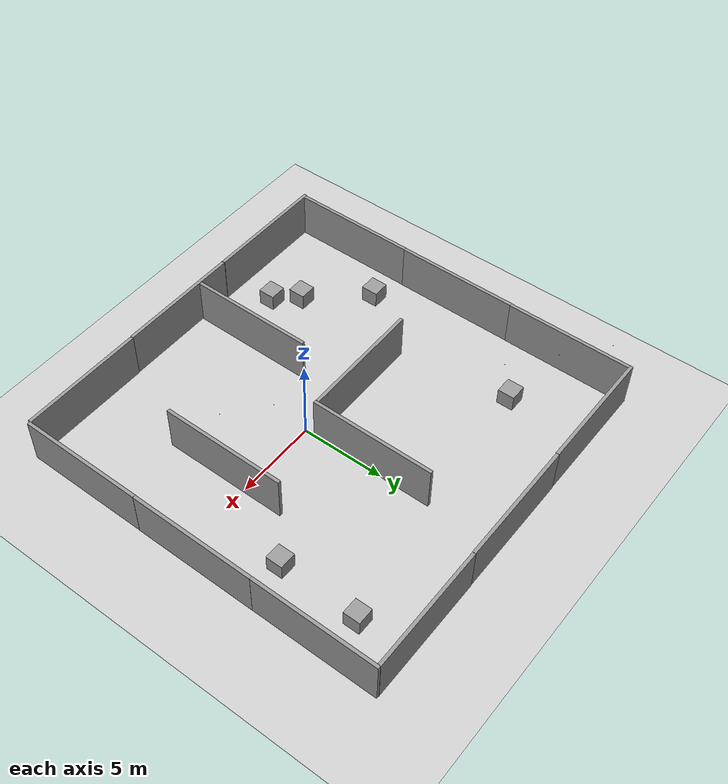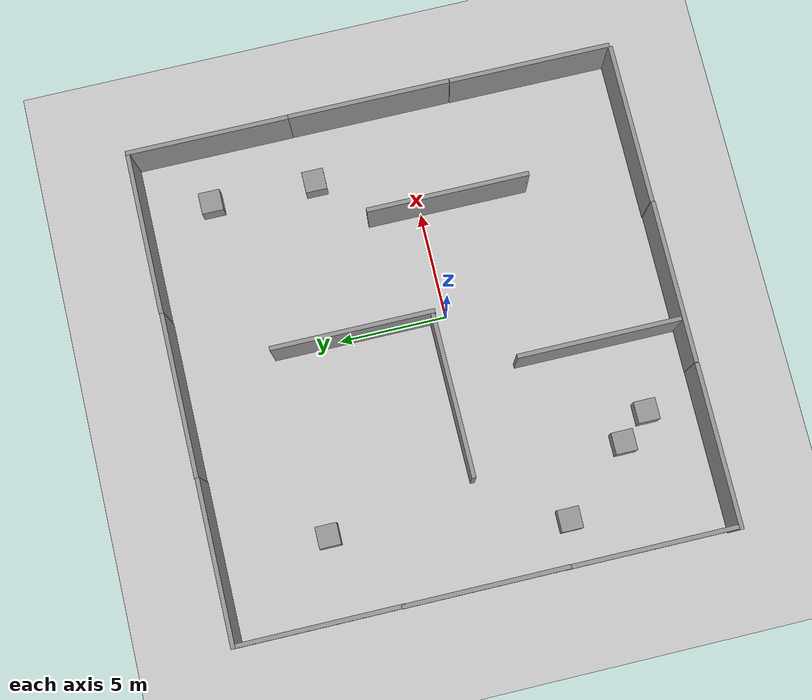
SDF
<sdf version="1.6">
 <world name="default">
  <light name="sun" type="directional">
   <pose>0 0 10 0 -0 0</pose>
   <diffuse>0.8 0.8 0.8 1</diffuse>
   <specular>0.1 0.1 0.1 1</specular>
   <attenuation>
    <range>1000</range>
    <constant>0.9</constant>
    <linear>0.01</linear>
    <quadratic>0.001</quadratic>
   </attenuation>
   <direction>-0.5 0.5 -1</direction>
  </light>
  <model name="ground_plane">
   <static>1</static>
   <link name="link">
    <collision name="collision">
     <geometry><plane><normal>0 0 1</normal><size>100 100</size></plane></geometry>
     <surface><friction><ode><mu>100</mu><mu2>50</mu2></ode></friction></surface>
    </collision>
    <visual name="visual">
     <cast_shadows>0</cast_shadows>
     <geometry><plane><normal>0 0 1</normal><size>100 100</size></plane></geometry>
     <material>
      <script><uri>file://media/materials/scripts/gazebo.material</uri><name>Gazebo/Grey</name></script>
     </material>
    </visual>
   </link>
  </model>
  <gravity>0 0 -9.8</gravity>
  <magnetic_field>6e-06 2.3e-05 -4.2e-05</magnetic_field>
  <atmosphere type="adiabatic"/>
  <physics name="default_physics" default="0" type="ode">
   <max_step_size>0.001</max_step_size>
   <real_time_factor>1</real_time_factor>
   <real_time_update_rate>1000</real_time_update_rate>
  </physics>
  <scene><ambient>0.4 0.4 0.4 1</ambient><background>0.7 0.7 0.7 1</background><shadows>1</shadows></scene>
  <spherical_coordinates>
   <surface_model>EARTH_WGS84</surface_model>
   <latitude_deg>0</latitude_deg>
   <longitude_deg>0</longitude_deg>
   <elevation>0</elevation>
   <heading_deg>0</heading_deg>
  </spherical_coordinates>
  <model name="grey_wall">
   <static>1</static>
   <link name="link">
    <pose>0 0 1.4 0 -0 0</pose>
    <collision name="collision"><geometry><box><size>7.5 0.2 2.8</size></box></geometry></collision>
    <visual name="visual">
     <cast_shadows>0</cast_shadows>
     <geometry><box><size>7.5 0.2 2.8</size></box></geometry>
     <material>
      <script>
       <uri>model://grey_wall/materials/scripts</uri>
       <uri>model://grey_wall/materials/textures</uri>
       <name>vrc/grey_wall</name>
      </script>
     </material>
    </visual>
   </link>
   <pose>6.2613 -10.0733 0 0 -0 0</pose>
  </model>
  <model name="grey_wall_0">
   <static>1</static>
   <link name="link">
    <pose>0 0 1.4 0 -0 0</pose>
    <collision name="collision"><geometry><box><size>7.5 0.2 2.8</size></box></geometry></collision>
    <visual name="visual">
     <cast_shadows>0</cast_shadows>
     <geometry><box><size>7.5 0.2 2.8</size></box></geometry>
     <material>
      <script>
       <uri>model://grey_wall/materials/scripts</uri>
       <uri>model://grey_wall/materials/textures</uri>
       <name>vrc/grey_wall</name>
      </script>
     </material>
    </visual>
   </link>
   <pose>10.1082 -6.29933 0 0 -0 1.56822</pose>
  </model>
  <model name="unit_box_0_0">
   <pose>3.35556 -11.1223 2.79982 -0.482892 0.000207 -0.610312</pose>
   <link name="link">
    <inertial>
     <mass>1</mass>
     <inertia>
      <ixx>0.166667</ixx>
      <ixy>0</ixy>
      <ixz>0</ixz>
      <iyy>0.166667</iyy>
      <iyz>0</iyz>
      <izz>0.166667</izz>
     </inertia>
    </inertial>
    <collision name="collision">
     <geometry><box><size>26998.3 4.53072e-05 0.000344048</size></box></geometry>
    </collision>
    <visual name="visual">
     <geometry><box><size>26998.3 4.53072e-05 0.000344048</size></box></geometry>
     <material>
      <script><name>Gazebo/Grey</name><uri>file://media/materials/scripts/gazebo.material</uri></script>
     </material>
    </visual>
   </link>
  </model>
  <model name="grey_wall_0_clone">
   <static>1</static>
   <link name="link">
    <pose>0 0 1.4 0 -0 0</pose>
    <collision name="collision"><geometry><box><size>7.5 0.2 2.8</size></box></geometry></collision>
    <visual name="visual">
     <cast_shadows>0</cast_shadows>
     <geometry><box><size>7.5 0.2 2.8</size></box></geometry>
     <material>
      <script>
       <uri>model://grey_wall/materials/scripts</uri>
       <uri>model://grey_wall/materials/textures</uri>
       <name>vrc/grey_wall</name>
      </script>
     </material>
    </visual>
   </link>
   <pose>10.1365 1.22047 0 0 -0 1.56822</pose>
  </model>
  <model name="grey_wall_0_clone_clone">
   <static>1</static>
   <link name="link">
    <pose>0 0 1.4 0 -0 0</pose>
    <collision name="collision"><geometry><box><size>7.5 0.2 2.8</size></box></geometry></collision>
    <visual name="visual">
     <cast_shadows>0</cast_shadows>
     <geometry><box><size>7.5 0.2 2.8</size></box></geometry>
     <material>
      <script>
       <uri>model://grey_wall/materials/scripts</uri>
       <uri>model://grey_wall/materials/textures</uri>
       <name>vrc/grey_wall</name>
      </script>
     </material>
    </visual>
   </link>
   <pose>10.1513 8.71164 0 0 -0 1.56822</pose>
  </model>
  <model name="grey_wall_0_clone_clone_clone">
   <static>1</static>
   <link name="link">
    <pose>0 0 1.4 0 -0 0</pose>
    <collision name="collision"><geometry><box><size>7.5 0.2 2.8</size></box></geometry></collision>
    <visual name="visual">
     <cast_shadows>0</cast_shadows>
     <geometry><box><size>7.5 0.2 2.8</size></box></geometry>
     <material>
      <script>
       <uri>model://grey_wall/materials/scripts</uri>
       <uri>model://grey_wall/materials/textures</uri>
       <name>vrc/grey_wall</name>
      </script>
     </material>
    </visual>
   </link>
   <pose>-12.3639 -6.26757 0 0 -0 1.56822</pose>
  </model>
  <model name="grey_wall_clone">
   <static>1</static>
   <link name="link">
    <pose>0 0 1.4 0 -0 0</pose>
    <collision name="collision"><geometry><box><size>7.5 0.2 2.8</size></box></geometry></collision>
    <visual name="visual">
     <cast_shadows>0</cast_shadows>
     <geometry><box><size>7.5 0.2 2.8</size></box></geometry>
     <material>
      <script>
       <uri>model://grey_wall/materials/scripts</uri>
       <uri>model://grey_wall/materials/textures</uri>
       <name>vrc/grey_wall</name>
      </script>
     </material>
    </visual>
   </link>
   <pose>6.35184 12.3767 0 0 -0 0</pose>
  </model>
  <model name="grey_wall_clone_clone">
   <static>1</static>
   <link name="link">
    <pose>0 0 1.4 0 -0 0</pose>
    <collision name="collision"><geometry><box><size>7.5 0.2 2.8</size></box></geometry></collision>
    <visual name="visual">
     <cast_shadows>0</cast_shadows>
     <geometry><box><size>7.5 0.2 2.8</size></box></geometry>
     <material>
      <script>
       <uri>model://grey_wall/materials/scripts</uri>
       <uri>model://grey_wall/materials/textures</uri>
       <name>vrc/grey_wall</name>
      </script>
     </material>
    </visual>
   </link>
   <pose>-1.15211 12.358 0 0 -0 0</pose>
  </model>
  <model name="grey_wall_clone_clone_clone">
   <static>1</static>
   <link name="link">
    <pose>0 0 1.4 0 -0 0</pose>
    <collision name="collision"><geometry><box><size>7.5 0.2 2.8</size></box></geometry></collision>
    <visual name="visual">
     <cast_shadows>0</cast_shadows>
     <geometry><box><size>7.5 0.2 2.8</size></box></geometry>
     <material>
      <script>
       <uri>model://grey_wall/materials/scripts</uri>
       <uri>model://grey_wall/materials/textures</uri>
       <name>vrc/grey_wall</name>
      </script>
     </material>
    </visual>
   </link>
   <pose>-8.64082 12.3356 0 0 -0 0</pose>
  </model>
  <model name="grey_wall_0_clone_clone_clone_clone">
   <static>1</static>
   <link name="link">
    <pose>0 0 1.4 0 -0 0</pose>
    <collision name="collision"><geometry><box><size>7.5 0.2 2.8</size></box></geometry></collision>
    <visual name="visual">
     <cast_shadows>0</cast_shadows>
     <geometry><box><size>7.5 0.2 2.8</size></box></geometry>
     <material>
      <script>
       <uri>model://grey_wall/materials/scripts</uri>
       <uri>model://grey_wall/materials/textures</uri>
       <name>vrc/grey_wall</name>
      </script>
     </material>
    </visual>
   </link>
   <pose>-12.2989 8.50945 0 0 -0 1.56822</pose>
  </model>
  <model name="grey_wall_clone_clone_clone_clone">
   <static>1</static>
   <link name="link">
    <pose>0 0 1.4 0 -0 0</pose>
    <collision name="collision"><geometry><box><size>7.5 0.2 2.8</size></box></geometry></collision>
    <visual name="visual">
     <cast_shadows>0</cast_shadows>
     <geometry><box><size>7.5 0.2 2.8</size></box></geometry>
     <material>
      <script>
       <uri>model://grey_wall/materials/scripts</uri>
       <uri>model://grey_wall/materials/textures</uri>
       <name>vrc/grey_wall</name>
      </script>
     </material>
    </visual>
   </link>
   <pose>-1.25023 -10.1041 0 0 -0 0</pose>
  </model>
  <model name="grey_wall_clone_clone_clone_clone_clone">
   <static>1</static>
   <link name="link">
    <pose>0 0 1.4 0 -0 0</pose>
    <collision name="collision"><geometry><box><size>7.5 0.2 2.8</size></box></geometry></collision>
    <visual name="visual">
     <cast_shadows>0</cast_shadows>
     <geometry><box><size>7.5 0.2 2.8</size></box></geometry>
     <material>
      <script>
       <uri>model://grey_wall/materials/scripts</uri>
       <uri>model://grey_wall/materials/textures</uri>
       <name>vrc/grey_wall</name>
      </script>
     </material>
    </visual>
   </link>
   <pose>-8.77268 -10.1086 0 0 -0 0</pose>
  </model>
  <model name="grey_wall_0_clone_clone_clone_clone_0">
   <static>1</static>
   <link name="link">
    <pose>0 0 1.4 0 -0 0</pose>
    <collision name="collision"><geometry><box><size>7.5 0.2 2.8</size></box></geometry></collision>
    <visual name="visual">
     <cast_shadows>0</cast_shadows>
     <geometry><box><size>7.5 0.2 2.8</size></box></geometry>
     <material>
      <script>
       <uri>model://grey_wall/materials/scripts</uri>
       <uri>model://grey_wall/materials/textures</uri>
       <name>vrc/grey_wall</name>
      </script>
     </material>
    </visual>
   </link>
   <pose>-12.3327 1.20252 0 0 -0 1.56822</pose>
  </model>
  <model name="grey_wall_0_clone_clone_clone_clone_1">
   <static>1</static>
   <link name="link">
    <pose>0 0 1.4 0 -0 0</pose>
    <collision name="collision"><geometry><box><size>7.5 0.2 2.8</size></box></geometry></collision>
    <visual name="visual">
     <cast_shadows>0</cast_shadows>
     <geometry><box><size>7.5 0.2 2.8</size></box></geometry>
     <material>
      <script>
       <uri>model://grey_wall/materials/scripts</uri>
       <uri>model://grey_wall/materials/textures</uri>
       <name>vrc/grey_wall</name>
      </script>
     </material>
    </visual>
   </link>
   <pose>-2.93264 -6.23396 0 0 -0 1.56822</pose>
  </model>
  <model name="grey_wall_0_clone_clone_clone_clone_1_clone">
   <static>1</static>
   <link name="link">
    <pose>0 0 1.4 0 -0 0</pose>
    <collision name="collision"><geometry><box><size>7.5 0.2 2.8</size></box></geometry></collision>
    <visual name="visual">
     <cast_shadows>0</cast_shadows>
     <geometry><box><size>7.5 0.2 2.8</size></box></geometry>
     <material>
      <script>
       <uri>model://grey_wall/materials/scripts</uri>
       <uri>model://grey_wall/materials/textures</uri>
       <name>vrc/grey_wall</name>
      </script>
     </material>
    </visual>
   </link>
   <pose>5.06921 -1.26325 0 0 -0 1.56822</pose>
  </model>
  <model name="grey_wall_0_clone_clone_clone_clone_1_clone_clone">
   <static>1</static>
   <link name="link">
    <pose>0 0 1.4 0 -0 0</pose>
    <collision name="collision"><geometry><box><size>7.5 0.2 2.8</size></box></geometry></collision>
    <visual name="visual">
     <cast_shadows>0</cast_shadows>
     <geometry><box><size>7.5 0.2 2.8</size></box></geometry>
     <material>
      <script>
       <uri>model://grey_wall/materials/scripts</uri>
       <uri>model://grey_wall/materials/textures</uri>
       <name>vrc/grey_wall</name>
      </script>
     </material>
    </visual>
   </link>
   <pose>-0.06824 4.30608 0 0 -0 1.56822</pose>
  </model>
  <model name="grey_wall_0_clone_clone_clone_clone_1_clone_clone_clone">
   <static>1</static>
   <link name="link">
    <pose>0 0 1.4 0 -0 0</pose>
    <collision name="collision"><geometry><box><size>7.5 0.2 2.8</size></box></geometry></collision>
    <visual name="visual">
     <cast_shadows>0</cast_shadows>
     <geometry><box><size>7.5 0.2 2.8</size></box></geometry>
     <material>
      <script>
       <uri>model://grey_wall/materials/scripts</uri>
       <uri>model://grey_wall/materials/textures</uri>
       <name>vrc/grey_wall</name>
      </script>
     </material>
    </visual>
   </link>
   <pose>-3.93506 0.652132 0 0 0 -3.13408</pose>
  </model>
  <model name="unit_box">
   <pose>7.49787 4.46849 0.499995 -1e-05 0 0</pose>
   <link name="link">
    <inertial>
     <mass>1</mass>
     <inertia>
      <ixx>0.166667</ixx>
      <ixy>0</ixy>
      <ixz>0</ixz>
      <iyy>0.166667</iyy>
      <iyz>0</iyz>
      <izz>0.166667</izz>
     </inertia>
    </inertial>
    <collision name="collision"><geometry><box><size>1 1 1</size></box></geometry></collision>
    <visual name="visual">
     <geometry><box><size>1 1 1</size></box></geometry>
     <material>
      <script><name>Gazebo/Grey</name><uri>file://media/materials/scripts/gazebo.material</uri></script>
     </material>
    </visual>
   </link>
  </model>
  <model name="unit_box_clone">
   <pose>-6.39414 -7.73468 0.499995 -1e-05 0 0</pose>
   <link name="link">
    <inertial>
     <mass>1</mass>
     <inertia>
      <ixx>0.166667</ixx>
      <ixy>0</ixy>
      <ixz>0</ixz>
      <iyy>0.166667</iyy>
      <iyz>0</iyz>
      <izz>0.166667</izz>
     </inertia>
    </inertial>
    <collision name="collision"><geometry><box><size>1 1 1</size></box></geometry></collision>
    <visual name="visual">
     <geometry><box><size>1 1 1</size></box></geometry>
     <material>
      <script><name>Gazebo/Grey</name><uri>file://media/materials/scripts/gazebo.material</uri></script>
     </material>
    </visual>
   </link>
  </model>
  <model name="unit_box_clone_clone">
   <pose>-7.5171 -6.39956 0.499995 -1e-05 0 0</pose>
   <link name="link">
    <inertial>
     <mass>1</mass>
     <inertia>
      <ixx>0.166667</ixx>
      <ixy>0</ixy>
      <ixz>0</ixz>
      <iyy>0.166667</iyy>
      <iyz>0</iyz>
      <izz>0.166667</izz>
     </inertia>
    </inertial>
    <collision name="collision"><geometry><box><size>1 1 1</size></box></geometry></collision>
    <visual name="visual">
     <geometry><box><size>1 1 1</size></box></geometry>
     <material>
      <script><name>Gazebo/Grey</name><uri>file://media/materials/scripts/gazebo.material</uri></script>
     </material>
    </visual>
   </link>
  </model>
  <model name="unit_box_clone_clone_clone">
   <pose>-10.3094 -3.18454 0.499995 -1e-05 0 0</pose>
   <link name="link">
    <inertial>
     <mass>1</mass>
     <inertia>
      <ixx>0.166667</ixx>
      <ixy>0</ixy>
      <ixz>0</ixz>
      <iyy>0.166667</iyy>
      <iyz>0</iyz>
      <izz>0.166667</izz>
     </inertia>
    </inertial>
    <collision name="collision"><geometry><box><size>1 1 1</size></box></geometry></collision>
    <visual name="visual">
     <geometry><box><size>1 1 1</size></box></geometry>
     <material>
      <script><name>Gazebo/Grey</name><uri>file://media/materials/scripts/gazebo.material</uri></script>
     </material>
    </visual>
   </link>
  </model>
  <model name="unit_box_0">
   <pose>-8.53278 7.44189 0.499995 -1e-05 0 0</pose>
   <link name="link">
    <inertial>
     <mass>1</mass>
     <inertia>
      <ixx>0.166667</ixx>
      <ixy>0</ixy>
      <ixz>0</ixz>
      <iyy>0.166667</iyy>
      <iyz>0</iyz>
      <izz>0.166667</izz>
     </inertia>
    </inertial>
    <collision name="collision"><geometry><box><size>1 1 1</size></box></geometry></collision>
    <visual name="visual">
     <geometry><box><size>1 1 1</size></box></geometry>
     <material>
      <script><name>Gazebo/Grey</name><uri>file://media/materials/scripts/gazebo.material</uri></script>
     </material>
    </visual>
   </link>
  </model>
  <model name="unit_box_1">
   <pose>7.61558 9.32573 0.5 0 -0 0</pose>
   <link name="link">
    <inertial>
     <mass>1</mass>
     <inertia>
      <ixx>0.166667</ixx>
      <ixy>0</ixy>
      <ixz>0</ixz>
      <iyy>0.166667</iyy>
      <iyz>0</iyz>
      <izz>0.166667</izz>
     </inertia>
    </inertial>
    <collision name="collision"><geometry><box><size>1 1 1</size></box></geometry></collision>
    <visual name="visual">
     <geometry><box><size>1 1 1</size></box></geometry>
     <material>
      <script><name>Gazebo/Grey</name><uri>file://media/materials/scripts/gazebo.material</uri></script>
     </material>
    </visual>
   </link>
  </model>
 </world>
</sdf>
